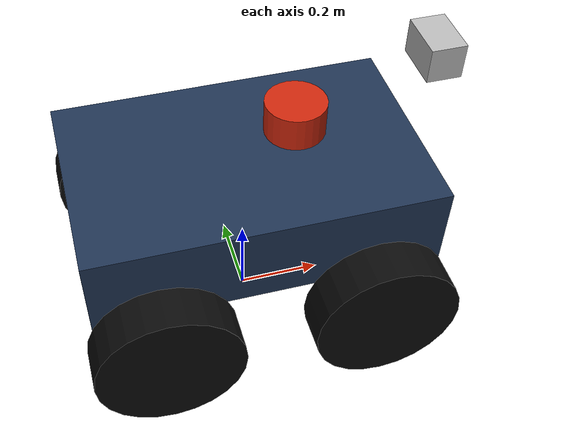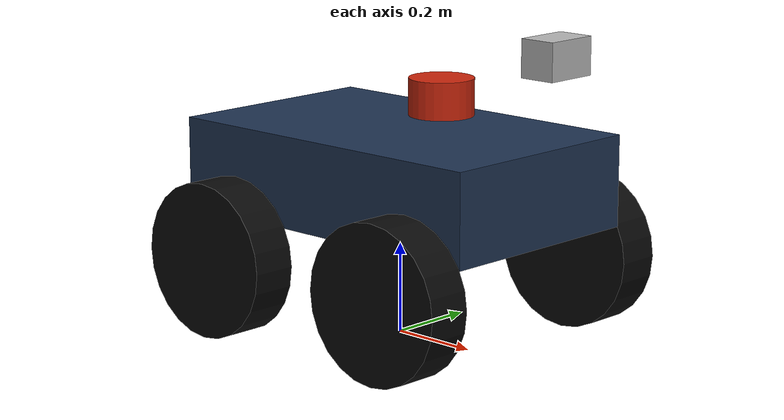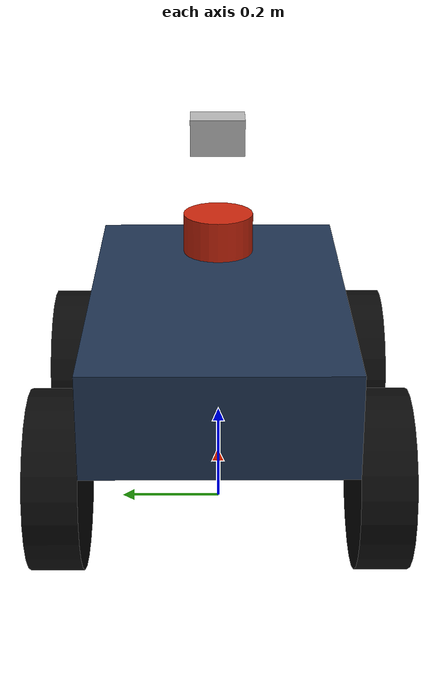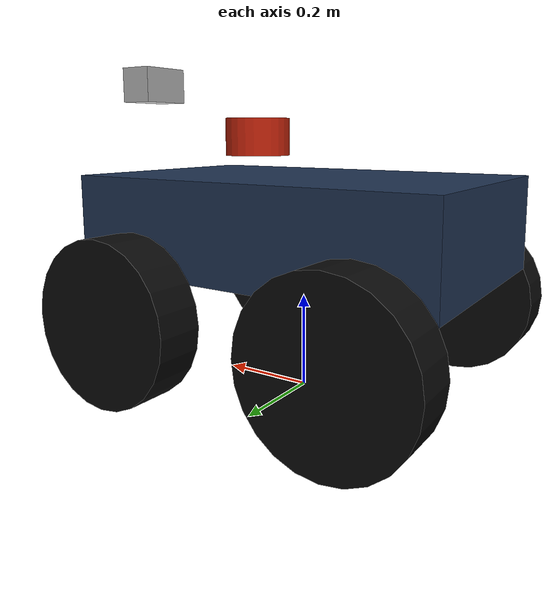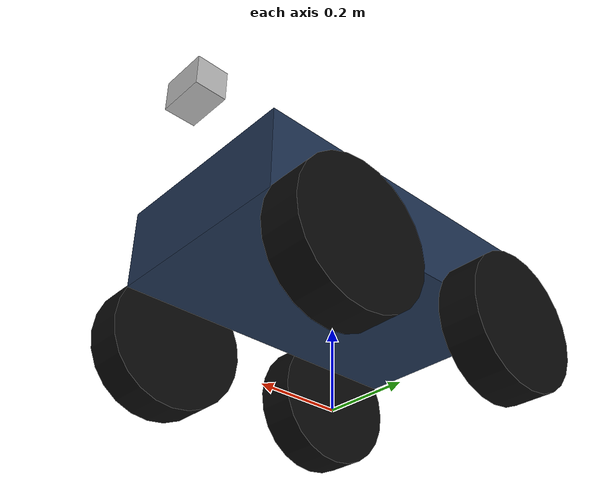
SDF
<?xml version='1.0' encoding='utf-8'?>
<sdf version="1.9">
  <model name="patrol_rover">
    <static>false</static>
    <pose>0 0 0.18 0 0 0</pose>
    <link name="base_link">
      <pose>0 0 0.18 0 0 0</pose>
      <inertial>
        <mass>8</mass>
        <inertia>
          <ixx>.20</ixx>
          <iyy>.35</iyy>
          <izz>.42</izz>
        </inertia>
      </inertial>
      <visual name="visual">
        <geometry>
          <box>
            <size>.80 .50 .20</size>
          </box>
        </geometry>
        <material>
          <diffuse>.12 .20 .32 1</diffuse>
        </material>
      </visual>
      <collision name="collision">
        <geometry>
          <box>
            <size>.80 .50 .20</size>
          </box>
        </geometry>
      </collision>
      <sensor name="body_contact" type="contact">
        <always_on>true</always_on>
        <update_rate>20</update_rate>
        <topic>/patrol/contacts</topic>
        <contact>
          <collision>collision</collision>
          <topic>/patrol/contacts</topic>
        </contact>
      </sensor>
    </link>
    <link name="front_left_wheel">
      <pose>.25 .30 0 -1.5708 0 0</pose>
      <inertial>
        <mass>.6</mass>
        <inertia>
          <ixx>.006</ixx>
          <iyy>.006</iyy>
          <izz>.006</izz>
        </inertia>
      </inertial>
      <visual name="visual">
        <geometry>
          <cylinder>
            <radius>.17</radius>
            <length>.10</length>
          </cylinder>
        </geometry>
        <material>
          <diffuse>.04 .04 .04 1</diffuse>
        </material>
      </visual>
      <collision name="collision">
        <geometry>
          <cylinder>
            <radius>.17</radius>
            <length>.10</length>
          </cylinder>
        </geometry>
        <surface>
          <friction>
            <ode>
              <mu>1</mu>
              <mu2>1</mu2>
              <slip1>.02</slip1>
              <slip2>0</slip2>
              <fdir1>0 0 1</fdir1>
            </ode>
          </friction>
        </surface>
      </collision>
    </link>
    <link name="front_right_wheel">
      <pose>.25 -.30 0 -1.5708 0 0</pose>
      <inertial>
        <mass>.6</mass>
        <inertia>
          <ixx>.006</ixx>
          <iyy>.006</iyy>
          <izz>.006</izz>
        </inertia>
      </inertial>
      <visual name="visual">
        <geometry>
          <cylinder>
            <radius>.17</radius>
            <length>.10</length>
          </cylinder>
        </geometry>
        <material>
          <diffuse>.04 .04 .04 1</diffuse>
        </material>
      </visual>
      <collision name="collision">
        <geometry>
          <cylinder>
            <radius>.17</radius>
            <length>.10</length>
          </cylinder>
        </geometry>
        <surface>
          <friction>
            <ode>
              <mu>1</mu>
              <mu2>1</mu2>
              <slip1>.02</slip1>
              <slip2>0</slip2>
              <fdir1>0 0 1</fdir1>
            </ode>
          </friction>
        </surface>
      </collision>
    </link>
    <link name="rear_left_wheel">
      <pose>-.25 .30 0 -1.5708 0 0</pose>
      <inertial>
        <mass>.6</mass>
        <inertia>
          <ixx>.006</ixx>
          <iyy>.006</iyy>
          <izz>.006</izz>
        </inertia>
      </inertial>
      <visual name="visual">
        <geometry>
          <cylinder>
            <radius>.17</radius>
            <length>.10</length>
          </cylinder>
        </geometry>
        <material>
          <diffuse>.04 .04 .04 1</diffuse>
        </material>
      </visual>
      <collision name="collision">
        <geometry>
          <cylinder>
            <radius>.17</radius>
            <length>.10</length>
          </cylinder>
        </geometry>
        <surface>
          <friction>
            <ode>
              <mu>1</mu>
              <mu2>1</mu2>
              <slip1>.02</slip1>
              <slip2>0</slip2>
              <fdir1>0 0 1</fdir1>
            </ode>
          </friction>
        </surface>
      </collision>
    </link>
    <link name="rear_right_wheel">
      <pose>-.25 -.30 0 -1.5708 0 0</pose>
      <inertial>
        <mass>.6</mass>
        <inertia>
          <ixx>.006</ixx>
          <iyy>.006</iyy>
          <izz>.006</izz>
        </inertia>
      </inertial>
      <visual name="visual">
        <geometry>
          <cylinder>
            <radius>.17</radius>
            <length>.10</length>
          </cylinder>
        </geometry>
        <material>
          <diffuse>.04 .04 .04 1</diffuse>
        </material>
      </visual>
      <collision name="collision">
        <geometry>
          <cylinder>
            <radius>.17</radius>
            <length>.10</length>
          </cylinder>
        </geometry>
        <surface>
          <friction>
            <ode>
              <mu>1</mu>
              <mu2>1</mu2>
              <slip1>.02</slip1>
              <slip2>0</slip2>
              <fdir1>0 0 1</fdir1>
            </ode>
          </friction>
        </surface>
      </collision>
    </link>
    <joint name="front_left_joint" type="revolute">
      <parent>base_link</parent>
      <child>front_left_wheel</child>
      <axis>
        <xyz>0 0 1</xyz>
        <limit>
          <lower>-1.79769e+308</lower>
          <upper>1.79769e+308</upper>
        </limit>
      </axis>
    </joint>
    <joint name="front_right_joint" type="revolute">
      <parent>base_link</parent>
      <child>front_right_wheel</child>
      <axis>
        <xyz>0 0 1</xyz>
        <limit>
          <lower>-1.79769e+308</lower>
          <upper>1.79769e+308</upper>
        </limit>
      </axis>
    </joint>
    <joint name="rear_left_joint" type="revolute">
      <parent>base_link</parent>
      <child>rear_left_wheel</child>
      <axis>
        <xyz>0 0 1</xyz>
        <limit>
          <lower>-1.79769e+308</lower>
          <upper>1.79769e+308</upper>
        </limit>
      </axis>
    </joint>
    <joint name="rear_right_joint" type="revolute">
      <parent>base_link</parent>
      <child>rear_right_wheel</child>
      <axis>
        <xyz>0 0 1</xyz>
        <limit>
          <lower>-1.79769e+308</lower>
          <upper>1.79769e+308</upper>
        </limit>
      </axis>
    </joint>
    <link name="lidar_link">
      <pose>.12 0 .36 0 0 0</pose>
      <visual name="visual">
        <geometry>
          <cylinder>
            <radius>.07</radius>
            <length>.08</length>
          </cylinder>
        </geometry>
        <material>
          <diffuse>.8 .15 .05 1</diffuse>
        </material>
      </visual>
      <sensor name="lidar" type="gpu_lidar">
        <topic>scan</topic>
        <always_on>true</always_on>
        <update_rate>10</update_rate>
        <visualize>true</visualize>
        <lidar>
          <scan>
            <horizontal>
              <samples>720</samples>
              <resolution>1</resolution>
              <min_angle>-3.14159</min_angle>
              <max_angle>3.14159</max_angle>
            </horizontal>
          </scan>
          <range>
            <min>.12</min>
            <max>25</max>
            <resolution>.01</resolution>
          </range>
        </lidar>
      </sensor>
      <collision name="collision">
        <geometry>
          <cylinder>
            <radius>.07</radius>
            <length>.08</length>
          </cylinder>
        </geometry>
      </collision>
    </link>
    <joint name="lidar_joint" type="fixed">
      <parent>base_link</parent>
      <child>lidar_link</child>
    </joint>
    <link name="camera_link">
      <pose>.43 0 .48 0 0 0</pose>
      <visual name="visual">
        <geometry>
          <box>
            <size>.08 .12 .08</size>
          </box>
        </geometry>
      </visual>
      <sensor name="camera" type="camera">
        <topic>camera/image</topic>
        <always_on>true</always_on>
        <update_rate>10</update_rate>
        <visualize>true</visualize>
        <camera>
          <horizontal_fov>1.2</horizontal_fov>
          <image>
            <width>640</width>
            <height>480</height>
          </image>
          <clip>
            <near>.1</near>
            <far>30</far>
          </clip>
        </camera>
      </sensor>
      <collision name="collision">
        <geometry>
          <box>
            <size>.08 .12 .08</size>
          </box>
        </geometry>
      </collision>
      <sensor name="camera_contact" type="contact">
        <always_on>true</always_on>
        <update_rate>20</update_rate>
        <topic>/patrol/contacts</topic>
        <contact>
          <collision>collision</collision>
          <topic>/patrol/contacts</topic>
        </contact>
      </sensor>
    </link>
    <joint name="camera_joint" type="fixed">
      <parent>base_link</parent>
      <child>camera_link</child>
    </joint>
    <plugin filename="gz-sim-diff-drive-system" name="gz::sim::systems::DiffDrive">
      <left_joint>front_left_joint</left_joint>
      <left_joint>rear_left_joint</left_joint>
      <right_joint>front_right_joint</right_joint>
      <right_joint>rear_right_joint</right_joint>
      <wheel_separation>0.60</wheel_separation>
      <wheel_radius>0.17</wheel_radius>
      <topic>/cmd_vel</topic>
      <odom_topic>/wheel_odometry</odom_topic>
      <max_linear_acceleration>1.5</max_linear_acceleration>
      <min_linear_acceleration>-2.5</min_linear_acceleration>
      <max_angular_acceleration>3.0</max_angular_acceleration>
      <min_angular_acceleration>-3.0</min_angular_acceleration>
    </plugin>
    <plugin filename="gz-sim-odometry-publisher-system" name="gz::sim::systems::OdometryPublisher">
      <odom_frame>map</odom_frame>
      <robot_base_frame>base_footprint</robot_base_frame>
      <odom_topic>/odom</odom_topic>
      <odom_publish_frequency>30</odom_publish_frequency>
      <dimensions>3</dimensions>
    </plugin>
  </model>
</sdf>
